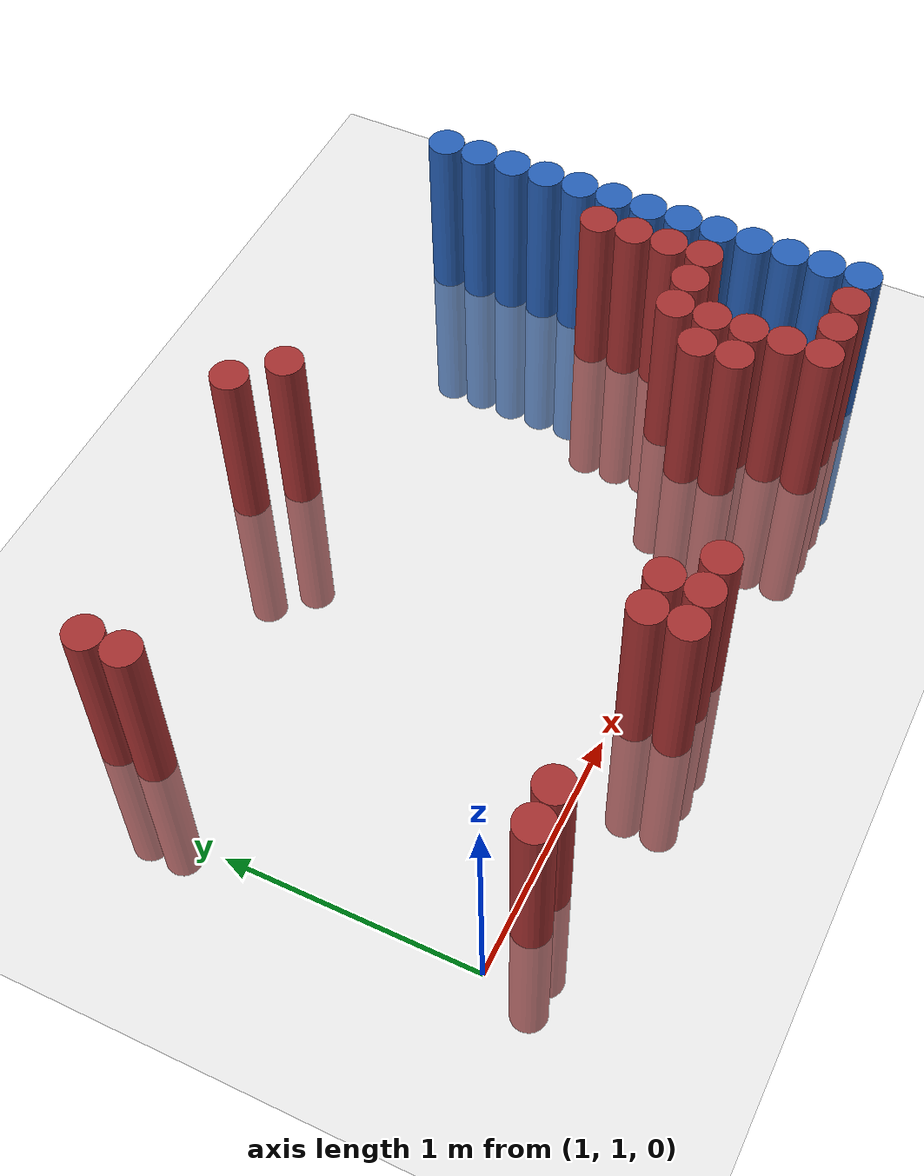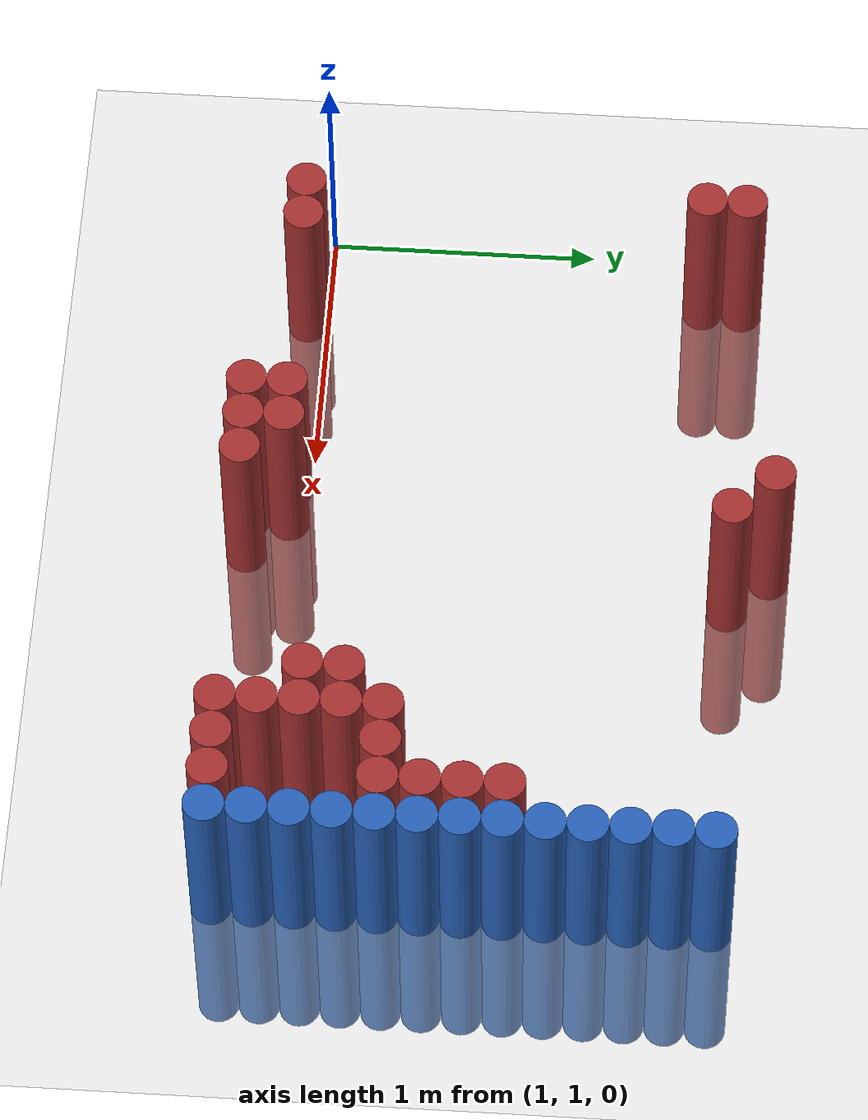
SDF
<sdf version="1.6">
 <world name="default">
  <model name="ground_plane">
   <static>1</static>
   <link name="link">
    <collision name="collision">
     <geometry><plane><normal>0 0 1</normal><size>100 100</size></plane></geometry>
     <surface><friction><ode><mu>100</mu><mu2>50</mu2></ode></friction></surface>
    </collision>
    <visual name="visual">
     <cast_shadows>0</cast_shadows>
     <geometry><plane><normal>0 0 1</normal><size>100 100</size></plane></geometry>
     <material>
      <script><uri>file://media/materials/scripts/gazebo.material</uri><name>Gazebo/Grey</name></script>
     </material>
    </visual>
   </link>
  </model>
  <model name="unit_cylinder_126">
   <static>1</static>
   <pose>3.925000 0.925000 0.000000 0.000000 0.000000 0.000000</pose>
   <link name="link">
    <inertial>
     <mass>1</mass>
     <inertia><ixx>0.145833</ixx><ixy>0</ixy><ixz>0</ixz><iyy>0.145833</iyy><iyz>0</iyz><izz>0.125</izz></inertia>
    </inertial>
    <collision name="collision">
     <geometry><cylinder><radius>0.075000</radius><length>1.5</length></cylinder></geometry>
    </collision>
    <visual name="visual">
     <geometry><cylinder><radius>0.075000</radius><length>1.5</length></cylinder></geometry>
     <material>
      <ambient>0.152000 0.379000 0.720000 1</ambient>
      <diffuse>0.152000 0.379000 0.720000 1</diffuse>
     </material>
     <material>
      <script><name>Gazebo/Grey</name><uri>file://media/materials/scripts/gazebo.material</uri></script>
     </material>
    </visual>
   </link>
  </model>
  <model name="unit_cylinder_128">
   <static>1</static>
   <pose>3.925000 1.075000 0.000000 0.000000 0.000000 0.000000</pose>
   <link name="link">
    <inertial>
     <mass>1</mass>
     <inertia><ixx>0.145833</ixx><ixy>0</ixy><ixz>0</ixz><iyy>0.145833</iyy><iyz>0</iyz><izz>0.125</izz></inertia>
    </inertial>
    <collision name="collision">
     <geometry><cylinder><radius>0.075000</radius><length>1.5</length></cylinder></geometry>
    </collision>
    <visual name="visual">
     <geometry><cylinder><radius>0.075000</radius><length>1.5</length></cylinder></geometry>
     <material>
      <ambient>0.152000 0.379000 0.720000 1</ambient>
      <diffuse>0.152000 0.379000 0.720000 1</diffuse>
     </material>
     <material>
      <script><name>Gazebo/Grey</name><uri>file://media/materials/scripts/gazebo.material</uri></script>
     </material>
    </visual>
   </link>
  </model>
  <model name="unit_cylinder_130">
   <static>1</static>
   <pose>3.925000 1.225000 0.000000 0.000000 0.000000 0.000000</pose>
   <link name="link">
    <inertial>
     <mass>1</mass>
     <inertia><ixx>0.145833</ixx><ixy>0</ixy><ixz>0</ixz><iyy>0.145833</iyy><iyz>0</iyz><izz>0.125</izz></inertia>
    </inertial>
    <collision name="collision">
     <geometry><cylinder><radius>0.075000</radius><length>1.5</length></cylinder></geometry>
    </collision>
    <visual name="visual">
     <geometry><cylinder><radius>0.075000</radius><length>1.5</length></cylinder></geometry>
     <material>
      <ambient>0.152000 0.379000 0.720000 1</ambient>
      <diffuse>0.152000 0.379000 0.720000 1</diffuse>
     </material>
     <material>
      <script><name>Gazebo/Grey</name><uri>file://media/materials/scripts/gazebo.material</uri></script>
     </material>
    </visual>
   </link>
  </model>
  <model name="unit_cylinder_132">
   <static>1</static>
   <pose>3.925000 1.375000 0.000000 0.000000 0.000000 0.000000</pose>
   <link name="link">
    <inertial>
     <mass>1</mass>
     <inertia><ixx>0.145833</ixx><ixy>0</ixy><ixz>0</ixz><iyy>0.145833</iyy><iyz>0</iyz><izz>0.125</izz></inertia>
    </inertial>
    <collision name="collision">
     <geometry><cylinder><radius>0.075000</radius><length>1.5</length></cylinder></geometry>
    </collision>
    <visual name="visual">
     <geometry><cylinder><radius>0.075000</radius><length>1.5</length></cylinder></geometry>
     <material>
      <ambient>0.152000 0.379000 0.720000 1</ambient>
      <diffuse>0.152000 0.379000 0.720000 1</diffuse>
     </material>
     <material>
      <script><name>Gazebo/Grey</name><uri>file://media/materials/scripts/gazebo.material</uri></script>
     </material>
    </visual>
   </link>
  </model>
  <model name="unit_cylinder_134">
   <static>1</static>
   <pose>3.925000 1.525000 0.000000 0.000000 0.000000 0.000000</pose>
   <link name="link">
    <inertial>
     <mass>1</mass>
     <inertia><ixx>0.145833</ixx><ixy>0</ixy><ixz>0</ixz><iyy>0.145833</iyy><iyz>0</iyz><izz>0.125</izz></inertia>
    </inertial>
    <collision name="collision">
     <geometry><cylinder><radius>0.075000</radius><length>1.5</length></cylinder></geometry>
    </collision>
    <visual name="visual">
     <geometry><cylinder><radius>0.075000</radius><length>1.5</length></cylinder></geometry>
     <material>
      <ambient>0.152000 0.379000 0.720000 1</ambient>
      <diffuse>0.152000 0.379000 0.720000 1</diffuse>
     </material>
     <material>
      <script><name>Gazebo/Grey</name><uri>file://media/materials/scripts/gazebo.material</uri></script>
     </material>
    </visual>
   </link>
  </model>
  <model name="unit_cylinder_136">
   <static>1</static>
   <pose>3.925000 1.675000 0.000000 0.000000 0.000000 0.000000</pose>
   <link name="link">
    <inertial>
     <mass>1</mass>
     <inertia><ixx>0.145833</ixx><ixy>0</ixy><ixz>0</ixz><iyy>0.145833</iyy><iyz>0</iyz><izz>0.125</izz></inertia>
    </inertial>
    <collision name="collision">
     <geometry><cylinder><radius>0.075000</radius><length>1.5</length></cylinder></geometry>
    </collision>
    <visual name="visual">
     <geometry><cylinder><radius>0.075000</radius><length>1.5</length></cylinder></geometry>
     <material>
      <ambient>0.152000 0.379000 0.720000 1</ambient>
      <diffuse>0.152000 0.379000 0.720000 1</diffuse>
     </material>
     <material>
      <script><name>Gazebo/Grey</name><uri>file://media/materials/scripts/gazebo.material</uri></script>
     </material>
    </visual>
   </link>
  </model>
  <model name="unit_cylinder_138">
   <static>1</static>
   <pose>3.925000 1.825000 0.000000 0.000000 0.000000 0.000000</pose>
   <link name="link">
    <inertial>
     <mass>1</mass>
     <inertia><ixx>0.145833</ixx><ixy>0</ixy><ixz>0</ixz><iyy>0.145833</iyy><iyz>0</iyz><izz>0.125</izz></inertia>
    </inertial>
    <collision name="collision">
     <geometry><cylinder><radius>0.075000</radius><length>1.5</length></cylinder></geometry>
    </collision>
    <visual name="visual">
     <geometry><cylinder><radius>0.075000</radius><length>1.5</length></cylinder></geometry>
     <material>
      <ambient>0.152000 0.379000 0.720000 1</ambient>
      <diffuse>0.152000 0.379000 0.720000 1</diffuse>
     </material>
     <material>
      <script><name>Gazebo/Grey</name><uri>file://media/materials/scripts/gazebo.material</uri></script>
     </material>
    </visual>
   </link>
  </model>
  <model name="unit_cylinder_140">
   <static>1</static>
   <pose>3.925000 1.975000 0.000000 0.000000 0.000000 0.000000</pose>
   <link name="link">
    <inertial>
     <mass>1</mass>
     <inertia><ixx>0.145833</ixx><ixy>0</ixy><ixz>0</ixz><iyy>0.145833</iyy><iyz>0</iyz><izz>0.125</izz></inertia>
    </inertial>
    <collision name="collision">
     <geometry><cylinder><radius>0.075000</radius><length>1.5</length></cylinder></geometry>
    </collision>
    <visual name="visual">
     <geometry><cylinder><radius>0.075000</radius><length>1.5</length></cylinder></geometry>
     <material>
      <ambient>0.152000 0.379000 0.720000 1</ambient>
      <diffuse>0.152000 0.379000 0.720000 1</diffuse>
     </material>
     <material>
      <script><name>Gazebo/Grey</name><uri>file://media/materials/scripts/gazebo.material</uri></script>
     </material>
    </visual>
   </link>
  </model>
  <model name="unit_cylinder_142">
   <static>1</static>
   <pose>3.925000 2.125000 0.000000 0.000000 0.000000 0.000000</pose>
   <link name="link">
    <inertial>
     <mass>1</mass>
     <inertia><ixx>0.145833</ixx><ixy>0</ixy><ixz>0</ixz><iyy>0.145833</iyy><iyz>0</iyz><izz>0.125</izz></inertia>
    </inertial>
    <collision name="collision">
     <geometry><cylinder><radius>0.075000</radius><length>1.5</length></cylinder></geometry>
    </collision>
    <visual name="visual">
     <geometry><cylinder><radius>0.075000</radius><length>1.5</length></cylinder></geometry>
     <material>
      <ambient>0.152000 0.379000 0.720000 1</ambient>
      <diffuse>0.152000 0.379000 0.720000 1</diffuse>
     </material>
     <material>
      <script><name>Gazebo/Grey</name><uri>file://media/materials/scripts/gazebo.material</uri></script>
     </material>
    </visual>
   </link>
  </model>
  <model name="unit_cylinder_144">
   <static>1</static>
   <pose>3.925000 2.275000 0.000000 0.000000 0.000000 0.000000</pose>
   <link name="link">
    <inertial>
     <mass>1</mass>
     <inertia><ixx>0.145833</ixx><ixy>0</ixy><ixz>0</ixz><iyy>0.145833</iyy><iyz>0</iyz><izz>0.125</izz></inertia>
    </inertial>
    <collision name="collision">
     <geometry><cylinder><radius>0.075000</radius><length>1.5</length></cylinder></geometry>
    </collision>
    <visual name="visual">
     <geometry><cylinder><radius>0.075000</radius><length>1.5</length></cylinder></geometry>
     <material>
      <ambient>0.152000 0.379000 0.720000 1</ambient>
      <diffuse>0.152000 0.379000 0.720000 1</diffuse>
     </material>
     <material>
      <script><name>Gazebo/Grey</name><uri>file://media/materials/scripts/gazebo.material</uri></script>
     </material>
    </visual>
   </link>
  </model>
  <model name="unit_cylinder_146">
   <static>1</static>
   <pose>3.925000 2.425000 0.000000 0.000000 0.000000 0.000000</pose>
   <link name="link">
    <inertial>
     <mass>1</mass>
     <inertia><ixx>0.145833</ixx><ixy>0</ixy><ixz>0</ixz><iyy>0.145833</iyy><iyz>0</iyz><izz>0.125</izz></inertia>
    </inertial>
    <collision name="collision">
     <geometry><cylinder><radius>0.075000</radius><length>1.5</length></cylinder></geometry>
    </collision>
    <visual name="visual">
     <geometry><cylinder><radius>0.075000</radius><length>1.5</length></cylinder></geometry>
     <material>
      <ambient>0.152000 0.379000 0.720000 1</ambient>
      <diffuse>0.152000 0.379000 0.720000 1</diffuse>
     </material>
     <material>
      <script><name>Gazebo/Grey</name><uri>file://media/materials/scripts/gazebo.material</uri></script>
     </material>
    </visual>
   </link>
  </model>
  <model name="unit_cylinder_148">
   <static>1</static>
   <pose>3.925000 2.575000 0.000000 0.000000 0.000000 0.000000</pose>
   <link name="link">
    <inertial>
     <mass>1</mass>
     <inertia><ixx>0.145833</ixx><ixy>0</ixy><ixz>0</ixz><iyy>0.145833</iyy><iyz>0</iyz><izz>0.125</izz></inertia>
    </inertial>
    <collision name="collision">
     <geometry><cylinder><radius>0.075000</radius><length>1.5</length></cylinder></geometry>
    </collision>
    <visual name="visual">
     <geometry><cylinder><radius>0.075000</radius><length>1.5</length></cylinder></geometry>
     <material>
      <ambient>0.152000 0.379000 0.720000 1</ambient>
      <diffuse>0.152000 0.379000 0.720000 1</diffuse>
     </material>
     <material>
      <script><name>Gazebo/Grey</name><uri>file://media/materials/scripts/gazebo.material</uri></script>
     </material>
    </visual>
   </link>
  </model>
  <model name="unit_cylinder_385">
   <static>1</static>
   <pose>1.225000 0.925000 0.000000 0.000000 0.000000 0.000000</pose>
   <link name="link">
    <inertial>
     <mass>1</mass>
     <inertia><ixx>0.145833</ixx><ixy>0</ixy><ixz>0</ixz><iyy>0.145833</iyy><iyz>0</iyz><izz>0.125</izz></inertia>
    </inertial>
    <collision name="collision">
     <geometry><cylinder><radius>0.075000</radius><length>1.5</length></cylinder></geometry>
    </collision>
    <visual name="visual">
     <geometry><cylinder><radius>0.075000</radius><length>1.5</length></cylinder></geometry>
     <material>
      <ambient>0.648000 0.192000 0.192000 1</ambient>
      <diffuse>0.648000 0.192000 0.192000 1</diffuse>
     </material>
     <material>
      <script><name>Gazebo/Grey</name><uri>file://media/materials/scripts/gazebo.material</uri></script>
     </material>
    </visual>
   </link>
  </model>
  <model name="unit_cylinder_386">
   <static>1</static>
   <pose>1.225000 2.425000 0.000000 0.000000 0.000000 0.000000</pose>
   <link name="link">
    <inertial>
     <mass>1</mass>
     <inertia><ixx>0.145833</ixx><ixy>0</ixy><ixz>0</ixz><iyy>0.145833</iyy><iyz>0</iyz><izz>0.125</izz></inertia>
    </inertial>
    <collision name="collision">
     <geometry><cylinder><radius>0.075000</radius><length>1.5</length></cylinder></geometry>
    </collision>
    <visual name="visual">
     <geometry><cylinder><radius>0.075000</radius><length>1.5</length></cylinder></geometry>
     <material>
      <ambient>0.648000 0.192000 0.192000 1</ambient>
      <diffuse>0.648000 0.192000 0.192000 1</diffuse>
     </material>
     <material>
      <script><name>Gazebo/Grey</name><uri>file://media/materials/scripts/gazebo.material</uri></script>
     </material>
    </visual>
   </link>
  </model>
  <model name="unit_cylinder_387">
   <static>1</static>
   <pose>1.225000 2.575000 0.000000 0.000000 0.000000 0.000000</pose>
   <link name="link">
    <inertial>
     <mass>1</mass>
     <inertia><ixx>0.145833</ixx><ixy>0</ixy><ixz>0</ixz><iyy>0.145833</iyy><iyz>0</iyz><izz>0.125</izz></inertia>
    </inertial>
    <collision name="collision">
     <geometry><cylinder><radius>0.075000</radius><length>1.5</length></cylinder></geometry>
    </collision>
    <visual name="visual">
     <geometry><cylinder><radius>0.075000</radius><length>1.5</length></cylinder></geometry>
     <material>
      <ambient>0.648000 0.192000 0.192000 1</ambient>
      <diffuse>0.648000 0.192000 0.192000 1</diffuse>
     </material>
     <material>
      <script><name>Gazebo/Grey</name><uri>file://media/materials/scripts/gazebo.material</uri></script>
     </material>
    </visual>
   </link>
  </model>
  <model name="unit_cylinder_394">
   <static>1</static>
   <pose>1.375000 0.925000 0.000000 0.000000 0.000000 0.000000</pose>
   <link name="link">
    <inertial>
     <mass>1</mass>
     <inertia><ixx>0.145833</ixx><ixy>0</ixy><ixz>0</ixz><iyy>0.145833</iyy><iyz>0</iyz><izz>0.125</izz></inertia>
    </inertial>
    <collision name="collision">
     <geometry><cylinder><radius>0.075000</radius><length>1.5</length></cylinder></geometry>
    </collision>
    <visual name="visual">
     <geometry><cylinder><radius>0.075000</radius><length>1.5</length></cylinder></geometry>
     <material>
      <ambient>0.648000 0.192000 0.192000 1</ambient>
      <diffuse>0.648000 0.192000 0.192000 1</diffuse>
     </material>
     <material>
      <script><name>Gazebo/Grey</name><uri>file://media/materials/scripts/gazebo.material</uri></script>
     </material>
    </visual>
   </link>
  </model>
  <model name="unit_cylinder_417">
   <static>1</static>
   <pose>2.125000 0.775000 0.000000 0.000000 0.000000 0.000000</pose>
   <link name="link">
    <inertial>
     <mass>1</mass>
     <inertia><ixx>0.145833</ixx><ixy>0</ixy><ixz>0</ixz><iyy>0.145833</iyy><iyz>0</iyz><izz>0.125</izz></inertia>
    </inertial>
    <collision name="collision">
     <geometry><cylinder><radius>0.075000</radius><length>1.5</length></cylinder></geometry>
    </collision>
    <visual name="visual">
     <geometry><cylinder><radius>0.075000</radius><length>1.5</length></cylinder></geometry>
     <material>
      <ambient>0.648000 0.192000 0.192000 1</ambient>
      <diffuse>0.648000 0.192000 0.192000 1</diffuse>
     </material>
     <material>
      <script><name>Gazebo/Grey</name><uri>file://media/materials/scripts/gazebo.material</uri></script>
     </material>
    </visual>
   </link>
  </model>
  <model name="unit_cylinder_418">
   <static>1</static>
   <pose>2.125000 0.925000 0.000000 0.000000 0.000000 0.000000</pose>
   <link name="link">
    <inertial>
     <mass>1</mass>
     <inertia><ixx>0.145833</ixx><ixy>0</ixy><ixz>0</ixz><iyy>0.145833</iyy><iyz>0</iyz><izz>0.125</izz></inertia>
    </inertial>
    <collision name="collision">
     <geometry><cylinder><radius>0.075000</radius><length>1.5</length></cylinder></geometry>
    </collision>
    <visual name="visual">
     <geometry><cylinder><radius>0.075000</radius><length>1.5</length></cylinder></geometry>
     <material>
      <ambient>0.648000 0.192000 0.192000 1</ambient>
      <diffuse>0.648000 0.192000 0.192000 1</diffuse>
     </material>
     <material>
      <script><name>Gazebo/Grey</name><uri>file://media/materials/scripts/gazebo.material</uri></script>
     </material>
    </visual>
   </link>
  </model>
  <model name="unit_cylinder_422">
   <static>1</static>
   <pose>2.275000 0.775000 0.000000 0.000000 0.000000 0.000000</pose>
   <link name="link">
    <inertial>
     <mass>1</mass>
     <inertia><ixx>0.145833</ixx><ixy>0</ixy><ixz>0</ixz><iyy>0.145833</iyy><iyz>0</iyz><izz>0.125</izz></inertia>
    </inertial>
    <collision name="collision">
     <geometry><cylinder><radius>0.075000</radius><length>1.5</length></cylinder></geometry>
    </collision>
    <visual name="visual">
     <geometry><cylinder><radius>0.075000</radius><length>1.5</length></cylinder></geometry>
     <material>
      <ambient>0.648000 0.192000 0.192000 1</ambient>
      <diffuse>0.648000 0.192000 0.192000 1</diffuse>
     </material>
     <material>
      <script><name>Gazebo/Grey</name><uri>file://media/materials/scripts/gazebo.material</uri></script>
     </material>
    </visual>
   </link>
  </model>
  <model name="unit_cylinder_423">
   <static>1</static>
   <pose>2.275000 0.925000 0.000000 0.000000 0.000000 0.000000</pose>
   <link name="link">
    <inertial>
     <mass>1</mass>
     <inertia><ixx>0.145833</ixx><ixy>0</ixy><ixz>0</ixz><iyy>0.145833</iyy><iyz>0</iyz><izz>0.125</izz></inertia>
    </inertial>
    <collision name="collision">
     <geometry><cylinder><radius>0.075000</radius><length>1.5</length></cylinder></geometry>
    </collision>
    <visual name="visual">
     <geometry><cylinder><radius>0.075000</radius><length>1.5</length></cylinder></geometry>
     <material>
      <ambient>0.648000 0.192000 0.192000 1</ambient>
      <diffuse>0.648000 0.192000 0.192000 1</diffuse>
     </material>
     <material>
      <script><name>Gazebo/Grey</name><uri>file://media/materials/scripts/gazebo.material</uri></script>
     </material>
    </visual>
   </link>
  </model>
  <model name="unit_cylinder_425">
   <static>1</static>
   <pose>2.425000 0.775000 0.000000 0.000000 0.000000 0.000000</pose>
   <link name="link">
    <inertial>
     <mass>1</mass>
     <inertia><ixx>0.145833</ixx><ixy>0</ixy><ixz>0</ixz><iyy>0.145833</iyy><iyz>0</iyz><izz>0.125</izz></inertia>
    </inertial>
    <collision name="collision">
     <geometry><cylinder><radius>0.075000</radius><length>1.5</length></cylinder></geometry>
    </collision>
    <visual name="visual">
     <geometry><cylinder><radius>0.075000</radius><length>1.5</length></cylinder></geometry>
     <material>
      <ambient>0.648000 0.192000 0.192000 1</ambient>
      <diffuse>0.648000 0.192000 0.192000 1</diffuse>
     </material>
     <material>
      <script><name>Gazebo/Grey</name><uri>file://media/materials/scripts/gazebo.material</uri></script>
     </material>
    </visual>
   </link>
  </model>
  <model name="unit_cylinder_426">
   <static>1</static>
   <pose>2.425000 2.725000 0.000000 0.000000 0.000000 0.000000</pose>
   <link name="link">
    <inertial>
     <mass>1</mass>
     <inertia><ixx>0.145833</ixx><ixy>0</ixy><ixz>0</ixz><iyy>0.145833</iyy><iyz>0</iyz><izz>0.125</izz></inertia>
    </inertial>
    <collision name="collision">
     <geometry><cylinder><radius>0.075000</radius><length>1.5</length></cylinder></geometry>
    </collision>
    <visual name="visual">
     <geometry><cylinder><radius>0.075000</radius><length>1.5</length></cylinder></geometry>
     <material>
      <ambient>0.648000 0.192000 0.192000 1</ambient>
      <diffuse>0.648000 0.192000 0.192000 1</diffuse>
     </material>
     <material>
      <script><name>Gazebo/Grey</name><uri>file://media/materials/scripts/gazebo.material</uri></script>
     </material>
    </visual>
   </link>
  </model>
  <model name="unit_cylinder_431">
   <static>1</static>
   <pose>2.575000 2.575000 0.000000 0.000000 0.000000 0.000000</pose>
   <link name="link">
    <inertial>
     <mass>1</mass>
     <inertia><ixx>0.145833</ixx><ixy>0</ixy><ixz>0</ixz><iyy>0.145833</iyy><iyz>0</iyz><izz>0.125</izz></inertia>
    </inertial>
    <collision name="collision">
     <geometry><cylinder><radius>0.075000</radius><length>1.5</length></cylinder></geometry>
    </collision>
    <visual name="visual">
     <geometry><cylinder><radius>0.075000</radius><length>1.5</length></cylinder></geometry>
     <material>
      <ambient>0.648000 0.192000 0.192000 1</ambient>
      <diffuse>0.648000 0.192000 0.192000 1</diffuse>
     </material>
     <material>
      <script><name>Gazebo/Grey</name><uri>file://media/materials/scripts/gazebo.material</uri></script>
     </material>
    </visual>
   </link>
  </model>
  <model name="unit_cylinder_456">
   <static>1</static>
   <pose>3.325000 1.075000 0.000000 0.000000 0.000000 0.000000</pose>
   <link name="link">
    <inertial>
     <mass>1</mass>
     <inertia><ixx>0.145833</ixx><ixy>0</ixy><ixz>0</ixz><iyy>0.145833</iyy><iyz>0</iyz><izz>0.125</izz></inertia>
    </inertial>
    <collision name="collision">
     <geometry><cylinder><radius>0.075000</radius><length>1.5</length></cylinder></geometry>
    </collision>
    <visual name="visual">
     <geometry><cylinder><radius>0.075000</radius><length>1.5</length></cylinder></geometry>
     <material>
      <ambient>0.648000 0.192000 0.192000 1</ambient>
      <diffuse>0.648000 0.192000 0.192000 1</diffuse>
     </material>
     <material>
      <script><name>Gazebo/Grey</name><uri>file://media/materials/scripts/gazebo.material</uri></script>
     </material>
    </visual>
   </link>
  </model>
  <model name="unit_cylinder_457">
   <static>1</static>
   <pose>3.325000 1.225000 0.000000 0.000000 0.000000 0.000000</pose>
   <link name="link">
    <inertial>
     <mass>1</mass>
     <inertia><ixx>0.145833</ixx><ixy>0</ixy><ixz>0</ixz><iyy>0.145833</iyy><iyz>0</iyz><izz>0.125</izz></inertia>
    </inertial>
    <collision name="collision">
     <geometry><cylinder><radius>0.075000</radius><length>1.5</length></cylinder></geometry>
    </collision>
    <visual name="visual">
     <geometry><cylinder><radius>0.075000</radius><length>1.5</length></cylinder></geometry>
     <material>
      <ambient>0.648000 0.192000 0.192000 1</ambient>
      <diffuse>0.648000 0.192000 0.192000 1</diffuse>
     </material>
     <material>
      <script><name>Gazebo/Grey</name><uri>file://media/materials/scripts/gazebo.material</uri></script>
     </material>
    </visual>
   </link>
  </model>
  <model name="unit_cylinder_460">
   <static>1</static>
   <pose>3.475000 0.775000 0.000000 0.000000 0.000000 0.000000</pose>
   <link name="link">
    <inertial>
     <mass>1</mass>
     <inertia><ixx>0.145833</ixx><ixy>0</ixy><ixz>0</ixz><iyy>0.145833</iyy><iyz>0</iyz><izz>0.125</izz></inertia>
    </inertial>
    <collision name="collision">
     <geometry><cylinder><radius>0.075000</radius><length>1.5</length></cylinder></geometry>
    </collision>
    <visual name="visual">
     <geometry><cylinder><radius>0.075000</radius><length>1.5</length></cylinder></geometry>
     <material>
      <ambient>0.648000 0.192000 0.192000 1</ambient>
      <diffuse>0.648000 0.192000 0.192000 1</diffuse>
     </material>
     <material>
      <script><name>Gazebo/Grey</name><uri>file://media/materials/scripts/gazebo.material</uri></script>
     </material>
    </visual>
   </link>
  </model>
  <model name="unit_cylinder_461">
   <static>1</static>
   <pose>3.475000 0.925000 0.000000 0.000000 0.000000 0.000000</pose>
   <link name="link">
    <inertial>
     <mass>1</mass>
     <inertia><ixx>0.145833</ixx><ixy>0</ixy><ixz>0</ixz><iyy>0.145833</iyy><iyz>0</iyz><izz>0.125</izz></inertia>
    </inertial>
    <collision name="collision">
     <geometry><cylinder><radius>0.075000</radius><length>1.5</length></cylinder></geometry>
    </collision>
    <visual name="visual">
     <geometry><cylinder><radius>0.075000</radius><length>1.5</length></cylinder></geometry>
     <material>
      <ambient>0.648000 0.192000 0.192000 1</ambient>
      <diffuse>0.648000 0.192000 0.192000 1</diffuse>
     </material>
     <material>
      <script><name>Gazebo/Grey</name><uri>file://media/materials/scripts/gazebo.material</uri></script>
     </material>
    </visual>
   </link>
  </model>
  <model name="unit_cylinder_462">
   <static>1</static>
   <pose>3.475000 1.075000 0.000000 0.000000 0.000000 0.000000</pose>
   <link name="link">
    <inertial>
     <mass>1</mass>
     <inertia><ixx>0.145833</ixx><ixy>0</ixy><ixz>0</ixz><iyy>0.145833</iyy><iyz>0</iyz><izz>0.125</izz></inertia>
    </inertial>
    <collision name="collision">
     <geometry><cylinder><radius>0.075000</radius><length>1.5</length></cylinder></geometry>
    </collision>
    <visual name="visual">
     <geometry><cylinder><radius>0.075000</radius><length>1.5</length></cylinder></geometry>
     <material>
      <ambient>0.648000 0.192000 0.192000 1</ambient>
      <diffuse>0.648000 0.192000 0.192000 1</diffuse>
     </material>
     <material>
      <script><name>Gazebo/Grey</name><uri>file://media/materials/scripts/gazebo.material</uri></script>
     </material>
    </visual>
   </link>
  </model>
  <model name="unit_cylinder_463">
   <static>1</static>
   <pose>3.475000 1.225000 0.000000 0.000000 0.000000 0.000000</pose>
   <link name="link">
    <inertial>
     <mass>1</mass>
     <inertia><ixx>0.145833</ixx><ixy>0</ixy><ixz>0</ixz><iyy>0.145833</iyy><iyz>0</iyz><izz>0.125</izz></inertia>
    </inertial>
    <collision name="collision">
     <geometry><cylinder><radius>0.075000</radius><length>1.5</length></cylinder></geometry>
    </collision>
    <visual name="visual">
     <geometry><cylinder><radius>0.075000</radius><length>1.5</length></cylinder></geometry>
     <material>
      <ambient>0.648000 0.192000 0.192000 1</ambient>
      <diffuse>0.648000 0.192000 0.192000 1</diffuse>
     </material>
     <material>
      <script><name>Gazebo/Grey</name><uri>file://media/materials/scripts/gazebo.material</uri></script>
     </material>
    </visual>
   </link>
  </model>
  <model name="unit_cylinder_464">
   <static>1</static>
   <pose>3.475000 1.375000 0.000000 0.000000 0.000000 0.000000</pose>
   <link name="link">
    <inertial>
     <mass>1</mass>
     <inertia><ixx>0.145833</ixx><ixy>0</ixy><ixz>0</ixz><iyy>0.145833</iyy><iyz>0</iyz><izz>0.125</izz></inertia>
    </inertial>
    <collision name="collision">
     <geometry><cylinder><radius>0.075000</radius><length>1.5</length></cylinder></geometry>
    </collision>
    <visual name="visual">
     <geometry><cylinder><radius>0.075000</radius><length>1.5</length></cylinder></geometry>
     <material>
      <ambient>0.648000 0.192000 0.192000 1</ambient>
      <diffuse>0.648000 0.192000 0.192000 1</diffuse>
     </material>
     <material>
      <script><name>Gazebo/Grey</name><uri>file://media/materials/scripts/gazebo.material</uri></script>
     </material>
    </visual>
   </link>
  </model>
  <model name="unit_cylinder_470">
   <static>1</static>
   <pose>3.625000 0.775000 0.000000 0.000000 0.000000 0.000000</pose>
   <link name="link">
    <inertial>
     <mass>1</mass>
     <inertia><ixx>0.145833</ixx><ixy>0</ixy><ixz>0</ixz><iyy>0.145833</iyy><iyz>0</iyz><izz>0.125</izz></inertia>
    </inertial>
    <collision name="collision">
     <geometry><cylinder><radius>0.075000</radius><length>1.5</length></cylinder></geometry>
    </collision>
    <visual name="visual">
     <geometry><cylinder><radius>0.075000</radius><length>1.5</length></cylinder></geometry>
     <material>
      <ambient>0.648000 0.192000 0.192000 1</ambient>
      <diffuse>0.648000 0.192000 0.192000 1</diffuse>
     </material>
     <material>
      <script><name>Gazebo/Grey</name><uri>file://media/materials/scripts/gazebo.material</uri></script>
     </material>
    </visual>
   </link>
  </model>
  <model name="unit_cylinder_471">
   <static>1</static>
   <pose>3.625000 1.375000 0.000000 0.000000 0.000000 0.000000</pose>
   <link name="link">
    <inertial>
     <mass>1</mass>
     <inertia><ixx>0.145833</ixx><ixy>0</ixy><ixz>0</ixz><iyy>0.145833</iyy><iyz>0</iyz><izz>0.125</izz></inertia>
    </inertial>
    <collision name="collision">
     <geometry><cylinder><radius>0.075000</radius><length>1.5</length></cylinder></geometry>
    </collision>
    <visual name="visual">
     <geometry><cylinder><radius>0.075000</radius><length>1.5</length></cylinder></geometry>
     <material>
      <ambient>0.648000 0.192000 0.192000 1</ambient>
      <diffuse>0.648000 0.192000 0.192000 1</diffuse>
     </material>
     <material>
      <script><name>Gazebo/Grey</name><uri>file://media/materials/scripts/gazebo.material</uri></script>
     </material>
    </visual>
   </link>
  </model>
  <model name="unit_cylinder_486">
   <static>1</static>
   <pose>3.775000 0.775000 0.000000 0.000000 0.000000 0.000000</pose>
   <link name="link">
    <inertial>
     <mass>1</mass>
     <inertia><ixx>0.145833</ixx><ixy>0</ixy><ixz>0</ixz><iyy>0.145833</iyy><iyz>0</iyz><izz>0.125</izz></inertia>
    </inertial>
    <collision name="collision">
     <geometry><cylinder><radius>0.075000</radius><length>1.5</length></cylinder></geometry>
    </collision>
    <visual name="visual">
     <geometry><cylinder><radius>0.075000</radius><length>1.5</length></cylinder></geometry>
     <material>
      <ambient>0.648000 0.192000 0.192000 1</ambient>
      <diffuse>0.648000 0.192000 0.192000 1</diffuse>
     </material>
     <material>
      <script><name>Gazebo/Grey</name><uri>file://media/materials/scripts/gazebo.material</uri></script>
     </material>
    </visual>
   </link>
  </model>
  <model name="unit_cylinder_487">
   <static>1</static>
   <pose>3.775000 1.375000 0.000000 0.000000 0.000000 0.000000</pose>
   <link name="link">
    <inertial>
     <mass>1</mass>
     <inertia><ixx>0.145833</ixx><ixy>0</ixy><ixz>0</ixz><iyy>0.145833</iyy><iyz>0</iyz><izz>0.125</izz></inertia>
    </inertial>
    <collision name="collision">
     <geometry><cylinder><radius>0.075000</radius><length>1.5</length></cylinder></geometry>
    </collision>
    <visual name="visual">
     <geometry><cylinder><radius>0.075000</radius><length>1.5</length></cylinder></geometry>
     <material>
      <ambient>0.648000 0.192000 0.192000 1</ambient>
      <diffuse>0.648000 0.192000 0.192000 1</diffuse>
     </material>
     <material>
      <script><name>Gazebo/Grey</name><uri>file://media/materials/scripts/gazebo.material</uri></script>
     </material>
    </visual>
   </link>
  </model>
  <model name="unit_cylinder_488">
   <static>1</static>
   <pose>3.775000 1.525000 0.000000 0.000000 0.000000 0.000000</pose>
   <link name="link">
    <inertial>
     <mass>1</mass>
     <inertia><ixx>0.145833</ixx><ixy>0</ixy><ixz>0</ixz><iyy>0.145833</iyy><iyz>0</iyz><izz>0.125</izz></inertia>
    </inertial>
    <collision name="collision">
     <geometry><cylinder><radius>0.075000</radius><length>1.5</length></cylinder></geometry>
    </collision>
    <visual name="visual">
     <geometry><cylinder><radius>0.075000</radius><length>1.5</length></cylinder></geometry>
     <material>
      <ambient>0.648000 0.192000 0.192000 1</ambient>
      <diffuse>0.648000 0.192000 0.192000 1</diffuse>
     </material>
     <material>
      <script><name>Gazebo/Grey</name><uri>file://media/materials/scripts/gazebo.material</uri></script>
     </material>
    </visual>
   </link>
  </model>
  <model name="unit_cylinder_489">
   <static>1</static>
   <pose>3.775000 1.675000 0.000000 0.000000 0.000000 0.000000</pose>
   <link name="link">
    <inertial>
     <mass>1</mass>
     <inertia><ixx>0.145833</ixx><ixy>0</ixy><ixz>0</ixz><iyy>0.145833</iyy><iyz>0</iyz><izz>0.125</izz></inertia>
    </inertial>
    <collision name="collision">
     <geometry><cylinder><radius>0.075000</radius><length>1.5</length></cylinder></geometry>
    </collision>
    <visual name="visual">
     <geometry><cylinder><radius>0.075000</radius><length>1.5</length></cylinder></geometry>
     <material>
      <ambient>0.648000 0.192000 0.192000 1</ambient>
      <diffuse>0.648000 0.192000 0.192000 1</diffuse>
     </material>
     <material>
      <script><name>Gazebo/Grey</name><uri>file://media/materials/scripts/gazebo.material</uri></script>
     </material>
    </visual>
   </link>
  </model>
  <model name="unit_cylinder_490">
   <static>1</static>
   <pose>3.775000 1.825000 0.000000 0.000000 0.000000 0.000000</pose>
   <link name="link">
    <inertial>
     <mass>1</mass>
     <inertia><ixx>0.145833</ixx><ixy>0</ixy><ixz>0</ixz><iyy>0.145833</iyy><iyz>0</iyz><izz>0.125</izz></inertia>
    </inertial>
    <collision name="collision">
     <geometry><cylinder><radius>0.075000</radius><length>1.5</length></cylinder></geometry>
    </collision>
    <visual name="visual">
     <geometry><cylinder><radius>0.075000</radius><length>1.5</length></cylinder></geometry>
     <material>
      <ambient>0.648000 0.192000 0.192000 1</ambient>
      <diffuse>0.648000 0.192000 0.192000 1</diffuse>
     </material>
     <material>
      <script><name>Gazebo/Grey</name><uri>file://media/materials/scripts/gazebo.material</uri></script>
     </material>
    </visual>
   </link>
  </model>
  <model name="unit_cylinder_514">
   <static>1</static>
   <pose>3.925000 0.775000 0.000000 0.000000 0.000000 0.000000</pose>
   <link name="link">
    <inertial>
     <mass>1</mass>
     <inertia><ixx>0.145833</ixx><ixy>0</ixy><ixz>0</ixz><iyy>0.145833</iyy><iyz>0</iyz><izz>0.125</izz></inertia>
    </inertial>
    <collision name="collision">
     <geometry><cylinder><radius>0.075000</radius><length>1.5</length></cylinder></geometry>
    </collision>
    <visual name="visual">
     <geometry><cylinder><radius>0.075000</radius><length>1.5</length></cylinder></geometry>
     <material>
      <ambient>0.152000 0.379000 0.720000 1</ambient>
      <diffuse>0.152000 0.379000 0.720000 1</diffuse>
     </material>
     <material>
      <script><name>Gazebo/Grey</name><uri>file://media/materials/scripts/gazebo.material</uri></script>
     </material>
    </visual>
   </link>
  </model>
  <model name="unit_cylinder_515">
   <static>1</static>
   <pose>3.925000 0.925000 0.000000 0.000000 0.000000 0.000000</pose>
   <link name="link">
    <inertial>
     <mass>1</mass>
     <inertia><ixx>0.145833</ixx><ixy>0</ixy><ixz>0</ixz><iyy>0.145833</iyy><iyz>0</iyz><izz>0.125</izz></inertia>
    </inertial>
    <collision name="collision">
     <geometry><cylinder><radius>0.075000</radius><length>1.5</length></cylinder></geometry>
    </collision>
    <visual name="visual">
     <geometry><cylinder><radius>0.075000</radius><length>1.5</length></cylinder></geometry>
     <material>
      <ambient>0.152000 0.379000 0.720000 1</ambient>
      <diffuse>0.152000 0.379000 0.720000 1</diffuse>
     </material>
     <material>
      <script><name>Gazebo/Grey</name><uri>file://media/materials/scripts/gazebo.material</uri></script>
     </material>
    </visual>
   </link>
  </model>
  <model name="unit_cylinder_516">
   <static>1</static>
   <pose>3.925000 1.075000 0.000000 0.000000 0.000000 0.000000</pose>
   <link name="link">
    <inertial>
     <mass>1</mass>
     <inertia><ixx>0.145833</ixx><ixy>0</ixy><ixz>0</ixz><iyy>0.145833</iyy><iyz>0</iyz><izz>0.125</izz></inertia>
    </inertial>
    <collision name="collision">
     <geometry><cylinder><radius>0.075000</radius><length>1.5</length></cylinder></geometry>
    </collision>
    <visual name="visual">
     <geometry><cylinder><radius>0.075000</radius><length>1.5</length></cylinder></geometry>
     <material>
      <ambient>0.152000 0.379000 0.720000 1</ambient>
      <diffuse>0.152000 0.379000 0.720000 1</diffuse>
     </material>
     <material>
      <script><name>Gazebo/Grey</name><uri>file://media/materials/scripts/gazebo.material</uri></script>
     </material>
    </visual>
   </link>
  </model>
  <model name="unit_cylinder_517">
   <static>1</static>
   <pose>3.925000 1.225000 0.000000 0.000000 0.000000 0.000000</pose>
   <link name="link">
    <inertial>
     <mass>1</mass>
     <inertia><ixx>0.145833</ixx><ixy>0</ixy><ixz>0</ixz><iyy>0.145833</iyy><iyz>0</iyz><izz>0.125</izz></inertia>
    </inertial>
    <collision name="collision">
     <geometry><cylinder><radius>0.075000</radius><length>1.5</length></cylinder></geometry>
    </collision>
    <visual name="visual">
     <geometry><cylinder><radius>0.075000</radius><length>1.5</length></cylinder></geometry>
     <material>
      <ambient>0.152000 0.379000 0.720000 1</ambient>
      <diffuse>0.152000 0.379000 0.720000 1</diffuse>
     </material>
     <material>
      <script><name>Gazebo/Grey</name><uri>file://media/materials/scripts/gazebo.material</uri></script>
     </material>
    </visual>
   </link>
  </model>
  <model name="unit_cylinder_518">
   <static>1</static>
   <pose>3.925000 1.375000 0.000000 0.000000 0.000000 0.000000</pose>
   <link name="link">
    <inertial>
     <mass>1</mass>
     <inertia><ixx>0.145833</ixx><ixy>0</ixy><ixz>0</ixz><iyy>0.145833</iyy><iyz>0</iyz><izz>0.125</izz></inertia>
    </inertial>
    <collision name="collision">
     <geometry><cylinder><radius>0.075000</radius><length>1.5</length></cylinder></geometry>
    </collision>
    <visual name="visual">
     <geometry><cylinder><radius>0.075000</radius><length>1.5</length></cylinder></geometry>
     <material>
      <ambient>0.152000 0.379000 0.720000 1</ambient>
      <diffuse>0.152000 0.379000 0.720000 1</diffuse>
     </material>
     <material>
      <script><name>Gazebo/Grey</name><uri>file://media/materials/scripts/gazebo.material</uri></script>
     </material>
    </visual>
   </link>
  </model>
  <model name="unit_cylinder_519">
   <static>1</static>
   <pose>3.925000 1.525000 0.000000 0.000000 0.000000 0.000000</pose>
   <link name="link">
    <inertial>
     <mass>1</mass>
     <inertia><ixx>0.145833</ixx><ixy>0</ixy><ixz>0</ixz><iyy>0.145833</iyy><iyz>0</iyz><izz>0.125</izz></inertia>
    </inertial>
    <collision name="collision">
     <geometry><cylinder><radius>0.075000</radius><length>1.5</length></cylinder></geometry>
    </collision>
    <visual name="visual">
     <geometry><cylinder><radius>0.075000</radius><length>1.5</length></cylinder></geometry>
     <material>
      <ambient>0.152000 0.379000 0.720000 1</ambient>
      <diffuse>0.152000 0.379000 0.720000 1</diffuse>
     </material>
     <material>
      <script><name>Gazebo/Grey</name><uri>file://media/materials/scripts/gazebo.material</uri></script>
     </material>
    </visual>
   </link>
  </model>
  <model name="unit_cylinder_520">
   <static>1</static>
   <pose>3.925000 1.675000 0.000000 0.000000 0.000000 0.000000</pose>
   <link name="link">
    <inertial>
     <mass>1</mass>
     <inertia><ixx>0.145833</ixx><ixy>0</ixy><ixz>0</ixz><iyy>0.145833</iyy><iyz>0</iyz><izz>0.125</izz></inertia>
    </inertial>
    <collision name="collision">
     <geometry><cylinder><radius>0.075000</radius><length>1.5</length></cylinder></geometry>
    </collision>
    <visual name="visual">
     <geometry><cylinder><radius>0.075000</radius><length>1.5</length></cylinder></geometry>
     <material>
      <ambient>0.152000 0.379000 0.720000 1</ambient>
      <diffuse>0.152000 0.379000 0.720000 1</diffuse>
     </material>
     <material>
      <script><name>Gazebo/Grey</name><uri>file://media/materials/scripts/gazebo.material</uri></script>
     </material>
    </visual>
   </link>
  </model>
  <model name="unit_cylinder_521">
   <static>1</static>
   <pose>3.925000 1.825000 0.000000 0.000000 0.000000 0.000000</pose>
   <link name="link">
    <inertial>
     <mass>1</mass>
     <inertia><ixx>0.145833</ixx><ixy>0</ixy><ixz>0</ixz><iyy>0.145833</iyy><iyz>0</iyz><izz>0.125</izz></inertia>
    </inertial>
    <collision name="collision">
     <geometry><cylinder><radius>0.075000</radius><length>1.5</length></cylinder></geometry>
    </collision>
    <visual name="visual">
     <geometry><cylinder><radius>0.075000</radius><length>1.5</length></cylinder></geometry>
     <material>
      <ambient>0.152000 0.379000 0.720000 1</ambient>
      <diffuse>0.152000 0.379000 0.720000 1</diffuse>
     </material>
     <material>
      <script><name>Gazebo/Grey</name><uri>file://media/materials/scripts/gazebo.material</uri></script>
     </material>
    </visual>
   </link>
  </model>
  <model name="unit_cylinder_522">
   <static>1</static>
   <pose>3.925000 1.975000 0.000000 0.000000 0.000000 0.000000</pose>
   <link name="link">
    <inertial>
     <mass>1</mass>
     <inertia><ixx>0.145833</ixx><ixy>0</ixy><ixz>0</ixz><iyy>0.145833</iyy><iyz>0</iyz><izz>0.125</izz></inertia>
    </inertial>
    <collision name="collision">
     <geometry><cylinder><radius>0.075000</radius><length>1.5</length></cylinder></geometry>
    </collision>
    <visual name="visual">
     <geometry><cylinder><radius>0.075000</radius><length>1.5</length></cylinder></geometry>
     <material>
      <ambient>0.152000 0.379000 0.720000 1</ambient>
      <diffuse>0.152000 0.379000 0.720000 1</diffuse>
     </material>
     <material>
      <script><name>Gazebo/Grey</name><uri>file://media/materials/scripts/gazebo.material</uri></script>
     </material>
    </visual>
   </link>
  </model>
  <model name="unit_cylinder_523">
   <static>1</static>
   <pose>3.925000 2.125000 0.000000 0.000000 0.000000 0.000000</pose>
   <link name="link">
    <inertial>
     <mass>1</mass>
     <inertia><ixx>0.145833</ixx><ixy>0</ixy><ixz>0</ixz><iyy>0.145833</iyy><iyz>0</iyz><izz>0.125</izz></inertia>
    </inertial>
    <collision name="collision">
     <geometry><cylinder><radius>0.075000</radius><length>1.5</length></cylinder></geometry>
    </collision>
    <visual name="visual">
     <geometry><cylinder><radius>0.075000</radius><length>1.5</length></cylinder></geometry>
     <material>
      <ambient>0.152000 0.379000 0.720000 1</ambient>
      <diffuse>0.152000 0.379000 0.720000 1</diffuse>
     </material>
     <material>
      <script><name>Gazebo/Grey</name><uri>file://media/materials/scripts/gazebo.material</uri></script>
     </material>
    </visual>
   </link>
  </model>
  <model name="unit_cylinder_524">
   <static>1</static>
   <pose>3.925000 2.275000 0.000000 0.000000 0.000000 0.000000</pose>
   <link name="link">
    <inertial>
     <mass>1</mass>
     <inertia><ixx>0.145833</ixx><ixy>0</ixy><ixz>0</ixz><iyy>0.145833</iyy><iyz>0</iyz><izz>0.125</izz></inertia>
    </inertial>
    <collision name="collision">
     <geometry><cylinder><radius>0.075000</radius><length>1.5</length></cylinder></geometry>
    </collision>
    <visual name="visual">
     <geometry><cylinder><radius>0.075000</radius><length>1.5</length></cylinder></geometry>
     <material>
      <ambient>0.152000 0.379000 0.720000 1</ambient>
      <diffuse>0.152000 0.379000 0.720000 1</diffuse>
     </material>
     <material>
      <script><name>Gazebo/Grey</name><uri>file://media/materials/scripts/gazebo.material</uri></script>
     </material>
    </visual>
   </link>
  </model>
  <model name="unit_cylinder_525">
   <static>1</static>
   <pose>3.925000 2.425000 0.000000 0.000000 0.000000 0.000000</pose>
   <link name="link">
    <inertial>
     <mass>1</mass>
     <inertia><ixx>0.145833</ixx><ixy>0</ixy><ixz>0</ixz><iyy>0.145833</iyy><iyz>0</iyz><izz>0.125</izz></inertia>
    </inertial>
    <collision name="collision">
     <geometry><cylinder><radius>0.075000</radius><length>1.5</length></cylinder></geometry>
    </collision>
    <visual name="visual">
     <geometry><cylinder><radius>0.075000</radius><length>1.5</length></cylinder></geometry>
     <material>
      <ambient>0.152000 0.379000 0.720000 1</ambient>
      <diffuse>0.152000 0.379000 0.720000 1</diffuse>
     </material>
     <material>
      <script><name>Gazebo/Grey</name><uri>file://media/materials/scripts/gazebo.material</uri></script>
     </material>
    </visual>
   </link>
  </model>
  <model name="unit_cylinder_526">
   <static>1</static>
   <pose>3.925000 2.575000 0.000000 0.000000 0.000000 0.000000</pose>
   <link name="link">
    <inertial>
     <mass>1</mass>
     <inertia><ixx>0.145833</ixx><ixy>0</ixy><ixz>0</ixz><iyy>0.145833</iyy><iyz>0</iyz><izz>0.125</izz></inertia>
    </inertial>
    <collision name="collision">
     <geometry><cylinder><radius>0.075000</radius><length>1.5</length></cylinder></geometry>
    </collision>
    <visual name="visual">
     <geometry><cylinder><radius>0.075000</radius><length>1.5</length></cylinder></geometry>
     <material>
      <ambient>0.152000 0.379000 0.720000 1</ambient>
      <diffuse>0.152000 0.379000 0.720000 1</diffuse>
     </material>
     <material>
      <script><name>Gazebo/Grey</name><uri>file://media/materials/scripts/gazebo.material</uri></script>
     </material>
    </visual>
   </link>
  </model>
 </world>
</sdf>
